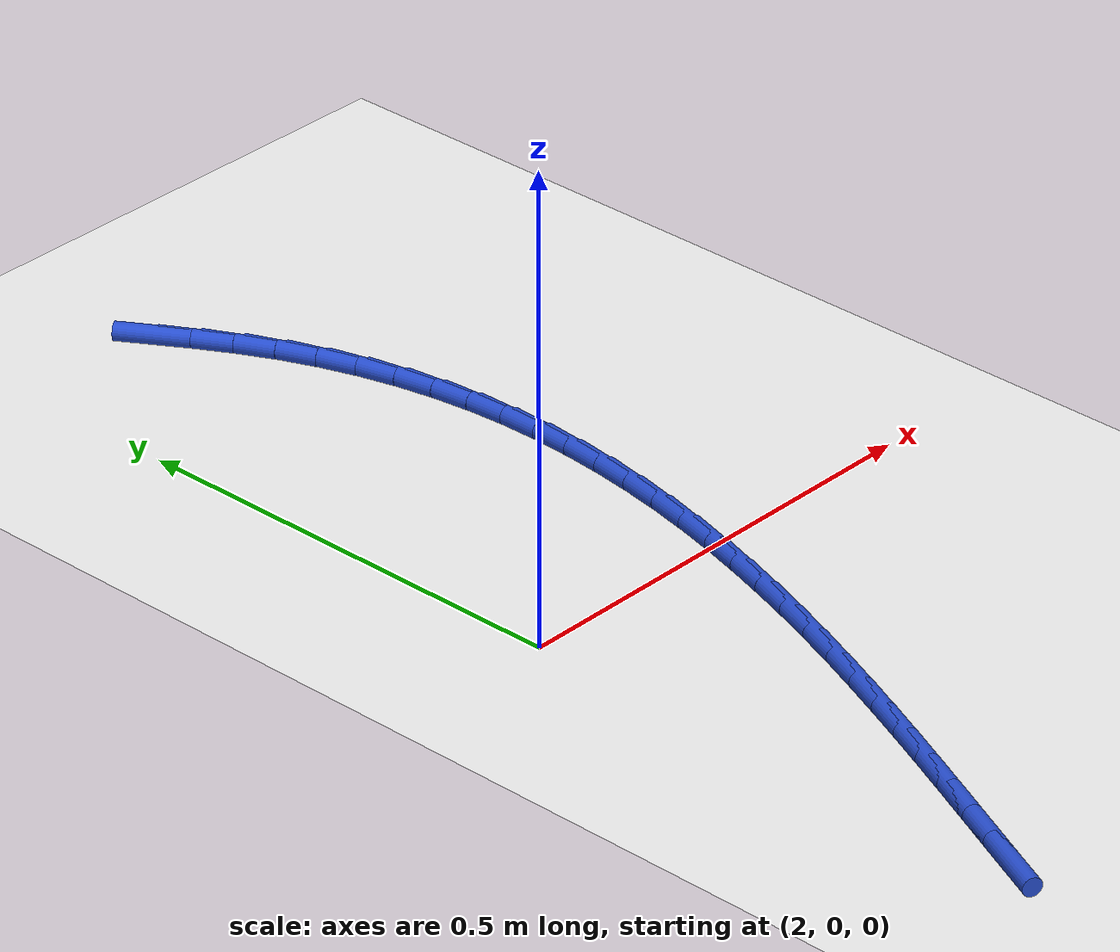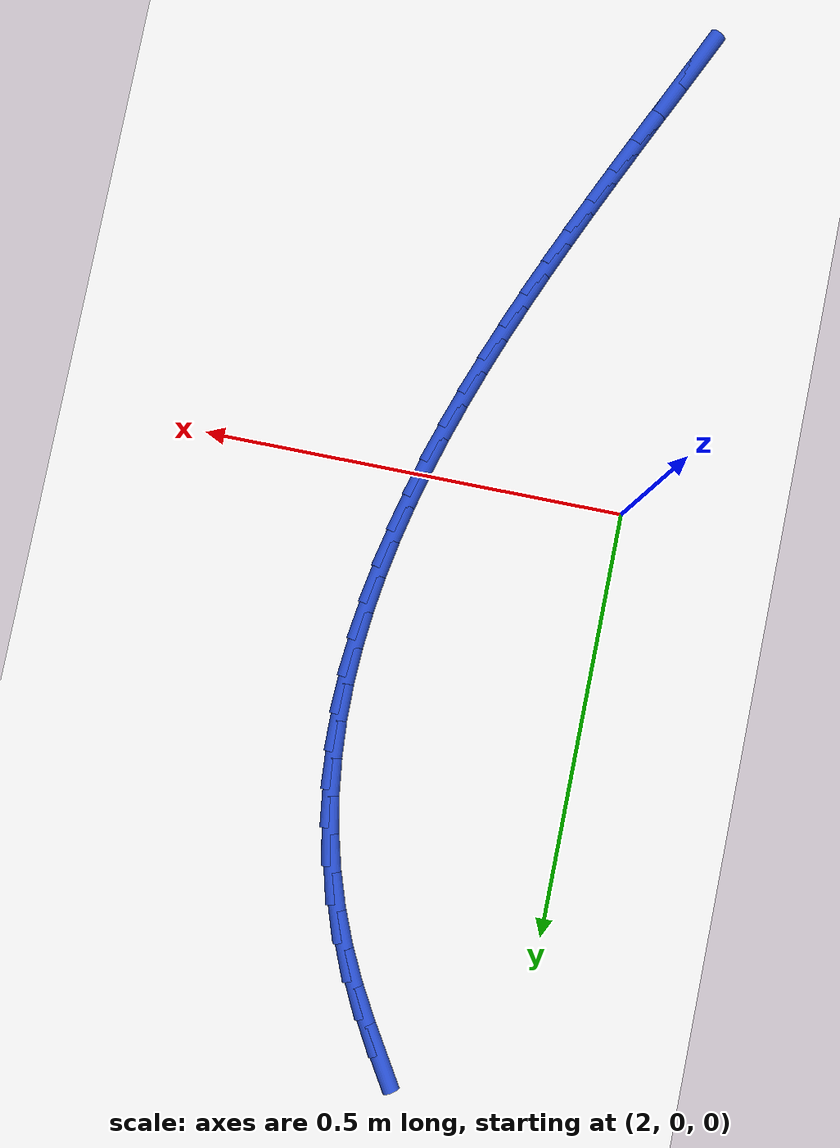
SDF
<sdf version="1.6">
 <world name="default">
  <model name="ground_plane">
   <static>1</static>
   <link name="link">
    <collision name="collision">
     <geometry><plane><normal>0 0 1</normal><size>100 100</size></plane></geometry>
     <surface><friction><ode><mu>100</mu><mu2>50</mu2></ode></friction></surface>
    </collision>
    <visual name="visual">
     <cast_shadows>0</cast_shadows>
     <geometry><plane><normal>0 0 1</normal><size>100 100</size></plane></geometry>
     <material>
      <script><uri>file://media/materials/scripts/gazebo.material</uri><name>Gazebo/WhiteGlow</name></script>
     </material>
    </visual>
   </link>
  </model>
  <model name="line">
   <link name="link_75">
    <pose>2.155904268480809 0.6673640403931729 0.01 0 1.57 -1.020369365184333</pose>
    <collision name="collision">
     <geometry><cylinder><radius>0.01</radius><length>0.08</length></cylinder></geometry>
    </collision>
    <visual name="visual">
     <material>
      <script><name>Gazebo/Blue</name><uri>file://media/materials/scripts/gazebo.material</uri></script>
     </material>
     <geometry><cylinder><radius>0.01</radius><length>0.08</length></cylinder></geometry>
    </visual>
   </link>
   <link name="link_76">
    <pose>2.1790611022780064 0.6296304496813893 0.01 0 1.57 -1.057243417890719</pose>
    <collision name="collision">
     <geometry><cylinder><radius>0.01</radius><length>0.08</length></cylinder></geometry>
    </collision>
    <visual name="visual">
     <material>
      <script><name>Gazebo/Blue</name><uri>file://media/materials/scripts/gazebo.material</uri></script>
     </material>
     <geometry><cylinder><radius>0.01</radius><length>0.08</length></cylinder></geometry>
    </visual>
   </link>
   <link name="link_77">
    <pose>2.200759385672183 0.5911605378914613 0.01 0 1.57 -1.1124662582189528</pose>
    <collision name="collision">
     <geometry><cylinder><radius>0.01</radius><length>0.08</length></cylinder></geometry>
    </collision>
    <visual name="visual">
     <material>
      <script><name>Gazebo/Blue</name><uri>file://media/materials/scripts/gazebo.material</uri></script>
     </material>
     <geometry><cylinder><radius>0.01</radius><length>0.08</length></cylinder></geometry>
    </visual>
   </link>
   <link name="link_78">
    <pose>2.220262598159185 0.5516299882652347 0.01 0 1.57 -1.180949639768087</pose>
    <collision name="collision">
     <geometry><cylinder><radius>0.01</radius><length>0.08</length></cylinder></geometry>
    </collision>
    <visual name="visual">
     <material>
      <script><name>Gazebo/Blue</name><uri>file://media/materials/scripts/gazebo.material</uri></script>
     </material>
     <geometry><cylinder><radius>0.01</radius><length>0.08</length></cylinder></geometry>
    </visual>
   </link>
   <link name="link_79">
    <pose>2.237008294876006 0.5108738755055513 0.01 0 1.57 -1.2494610498458565</pose>
    <collision name="collision">
     <geometry><cylinder><radius>0.01</radius><length>0.08</length></cylinder></geometry>
    </collision>
    <visual name="visual">
     <material>
      <script><name>Gazebo/Blue</name><uri>file://media/materials/scripts/gazebo.material</uri></script>
     </material>
     <geometry><cylinder><radius>0.01</radius><length>0.08</length></cylinder></geometry>
    </visual>
   </link>
   <link name="link_80">
    <pose>2.250896699474961 0.46915091434970824 0.01 0 1.57 -1.3165749980136106</pose>
    <collision name="collision">
     <geometry><cylinder><radius>0.01</radius><length>0.08</length></cylinder></geometry>
    </collision>
    <visual name="visual">
     <material>
      <script><name>Gazebo/Blue</name><uri>file://media/materials/scripts/gazebo.material</uri></script>
     </material>
     <geometry><cylinder><radius>0.01</radius><length>0.08</length></cylinder></geometry>
    </visual>
   </link>
   <link name="link_81">
    <pose>2.2619040534130606 0.4267894160465061 0.01 0 1.57 -1.382648691737762</pose>
    <collision name="collision">
     <geometry><cylinder><radius>0.01</radius><length>0.08</length></cylinder></geometry>
    </collision>
    <visual name="visual">
     <material>
      <script><name>Gazebo/Blue</name><uri>file://media/materials/scripts/gazebo.material</uri></script>
     </material>
     <geometry><cylinder><radius>0.01</radius><length>0.08</length></cylinder></geometry>
    </visual>
   </link>
   <link name="link_82">
    <pose>2.2700392349920593 0.38406254152364466 0.01 0 1.57 -1.446249874943885</pose>
    <collision name="collision">
     <geometry><cylinder><radius>0.01</radius><length>0.08</length></cylinder></geometry>
    </collision>
    <visual name="visual">
     <material>
      <script><name>Gazebo/Blue</name><uri>file://media/materials/scripts/gazebo.material</uri></script>
     </material>
     <geometry><cylinder><radius>0.01</radius><length>0.08</length></cylinder></geometry>
    </visual>
   </link>
   <link name="link_83">
    <pose>2.275423781124191 0.34105307918382954 0.01 0 1.57 -1.506613651423778</pose>
    <collision name="collision">
     <geometry><cylinder><radius>0.01</radius><length>0.08</length></cylinder></geometry>
    </collision>
    <visual name="visual">
     <material>
      <script><name>Gazebo/Blue</name><uri>file://media/materials/scripts/gazebo.material</uri></script>
     </material>
     <geometry><cylinder><radius>0.01</radius><length>0.08</length></cylinder></geometry>
    </visual>
   </link>
   <link name="link_84">
    <pose>2.278203519685037 0.29780277012758266 0.01 0 1.57 -1.5634141090888278</pose>
    <collision name="collision">
     <geometry><cylinder><radius>0.01</radius><length>0.08</length></cylinder></geometry>
    </collision>
    <visual name="visual">
     <material>
      <script><name>Gazebo/Blue</name><uri>file://media/materials/scripts/gazebo.material</uri></script>
     </material>
     <geometry><cylinder><radius>0.01</radius><length>0.08</length></cylinder></geometry>
    </visual>
   </link>
   <link name="link_85">
    <pose>2.278524278550183 0.2543533554554244 0.01 0 1.57 1.5251380988046166</pose>
    <collision name="collision">
     <geometry><cylinder><radius>0.01</radius><length>0.08</length></cylinder></geometry>
    </collision>
    <visual name="visual">
     <material>
      <script><name>Gazebo/Blue</name><uri>file://media/materials/scripts/gazebo.material</uri></script>
     </material>
     <geometry><cylinder><radius>0.01</radius><length>0.08</length></cylinder></geometry>
    </visual>
   </link>
   <link name="link_86">
    <pose>2.27653188559521 0.21074657626787652 0.01 0 1.57 1.4759425711324763</pose>
    <collision name="collision">
     <geometry><cylinder><radius>0.01</radius><length>0.08</length></cylinder></geometry>
    </collision>
    <visual name="visual">
     <material>
      <script><name>Gazebo/Blue</name><uri>file://media/materials/scripts/gazebo.material</uri></script>
     </material>
     <geometry><cylinder><radius>0.01</radius><length>0.08</length></cylinder></geometry>
    </visual>
   </link>
   <link name="link_87">
    <pose>2.272372168695703 0.16702417366546002 0.01 0 1.57 1.4305868336575038</pose>
    <collision name="collision">
     <geometry><cylinder><radius>0.01</radius><length>0.08</length></cylinder></geometry>
    </collision>
    <visual name="visual">
     <material>
      <script><name>Gazebo/Blue</name><uri>file://media/materials/scripts/gazebo.material</uri></script>
     </material>
     <geometry><cylinder><radius>0.01</radius><length>0.08</length></cylinder></geometry>
    </visual>
   </link>
   <link name="link_88">
    <pose>2.266190955727243 0.12322788874869521 0.01 0 1.57 1.388998250799786</pose>
    <collision name="collision">
     <geometry><cylinder><radius>0.01</radius><length>0.08</length></cylinder></geometry>
    </collision>
    <visual name="visual">
     <material>
      <script><name>Gazebo/Blue</name><uri>file://media/materials/scripts/gazebo.material</uri></script>
     </material>
     <geometry><cylinder><radius>0.01</radius><length>0.08</length></cylinder></geometry>
    </visual>
   </link>
   <link name="link_89">
    <pose>2.2581340745654166 0.07939946261810443 0.01 0 1.57 1.3510575698864697</pose>
    <collision name="collision">
     <geometry><cylinder><radius>0.01</radius><length>0.08</length></cylinder></geometry>
    </collision>
    <visual name="visual">
     <material>
      <script><name>Gazebo/Blue</name><uri>file://media/materials/scripts/gazebo.material</uri></script>
     </material>
     <geometry><cylinder><radius>0.01</radius><length>0.08</length></cylinder></geometry>
    </visual>
   </link>
   <link name="link_90">
    <pose>2.2483473530858054 0.035580636374208274 0.01 0 1.57 1.316616870848242</pose>
    <collision name="collision">
     <geometry><cylinder><radius>0.01</radius><length>0.08</length></cylinder></geometry>
    </collision>
    <visual name="visual">
     <material>
      <script><name>Gazebo/Blue</name><uri>file://media/materials/scripts/gazebo.material</uri></script>
     </material>
     <geometry><cylinder><radius>0.01</radius><length>0.08</length></cylinder></geometry>
    </visual>
   </link>
   <link name="link_91">
    <pose>2.236976619163992 -0.008186848882472089 0.01 0 1.57 1.2855141276721478</pose>
    <collision name="collision">
     <geometry><cylinder><radius>0.01</radius><length>0.08</length></cylinder></geometry>
    </collision>
    <visual name="visual">
     <material>
      <script><name>Gazebo/Blue</name><uri>file://media/materials/scripts/gazebo.material</uri></script>
     </material>
     <geometry><cylinder><radius>0.01</radius><length>0.08</length></cylinder></geometry>
    </visual>
   </link>
   <link name="link_92">
    <pose>2.224167700675561 -0.0518612520514165 0.01 0 1.57 1.2575844973854422</pose>
    <collision name="collision">
     <geometry><cylinder><radius>0.01</radius><length>0.08</length></cylinder></geometry>
    </collision>
    <visual name="visual">
     <material>
      <script><name>Gazebo/Blue</name><uri>file://media/materials/scripts/gazebo.material</uri></script>
     </material>
     <geometry><cylinder><radius>0.01</radius><length>0.08</length></cylinder></geometry>
    </visual>
   </link>
   <link name="link_93">
    <pose>2.210066425496096 -0.095400832032102 0.01 0 1.57 1.2326687595561678</pose>
    <collision name="collision">
     <geometry><cylinder><radius>0.01</radius><length>0.08</length></cylinder></geometry>
    </collision>
    <visual name="visual">
     <material>
      <script><name>Gazebo/Blue</name><uri>file://media/materials/scripts/gazebo.material</uri></script>
     </material>
     <geometry><cylinder><radius>0.01</radius><length>0.08</length></cylinder></geometry>
    </visual>
   </link>
   <link name="link_94">
    <pose>2.1948186215011796 -0.13876384772400832 0.01 0 1.57 1.2106194526416034</pose>
    <collision name="collision">
     <geometry><cylinder><radius>0.01</radius><length>0.08</length></cylinder></geometry>
    </collision>
    <visual name="visual">
     <material>
      <script><name>Gazebo/Blue</name><uri>file://media/materials/scripts/gazebo.material</uri></script>
     </material>
     <geometry><cylinder><radius>0.01</radius><length>0.08</length></cylinder></geometry>
    </visual>
   </link>
   <link name="link_95">
    <pose>2.1785701165663953 -0.18190855802661443 0.01 0 1.57 1.191305263471172</pose>
    <collision name="collision">
     <geometry><cylinder><radius>0.01</radius><length>0.08</length></cylinder></geometry>
    </collision>
    <visual name="visual">
     <material>
      <script><name>Gazebo/Blue</name><uri>file://media/materials/scripts/gazebo.material</uri></script>
     </material>
     <geometry><cylinder><radius>0.01</radius><length>0.08</length></cylinder></geometry>
    </visual>
   </link>
   <link name="link_96">
    <pose>2.1614667385673263 -0.22479322183939898 0.01 0 1.57 1.1746141773821444</pose>
    <collision name="collision">
     <geometry><cylinder><radius>0.01</radius><length>0.08</length></cylinder></geometry>
    </collision>
    <visual name="visual">
     <material>
      <script><name>Gazebo/Blue</name><uri>file://media/materials/scripts/gazebo.material</uri></script>
     </material>
     <geometry><cylinder><radius>0.01</radius><length>0.08</length></cylinder></geometry>
    </visual>
   </link>
   <link name="link_97">
    <pose>2.143654315379557 -0.2673760980618411 0.01 0 1.57 1.1604558256636974</pose>
    <collision name="collision">
     <geometry><cylinder><radius>0.01</radius><length>0.08</length></cylinder></geometry>
    </collision>
    <visual name="visual">
     <material>
      <script><name>Gazebo/Blue</name><uri>file://media/materials/scripts/gazebo.material</uri></script>
     </material>
     <geometry><cylinder><radius>0.01</radius><length>0.08</length></cylinder></geometry>
    </visual>
   </link>
   <link name="link_98">
    <pose>2.1252786748786683 -0.30961544559342036 0.01 0 1.57 1.1487633957455161</pose>
    <collision name="collision">
     <geometry><cylinder><radius>0.01</radius><length>0.08</length></cylinder></geometry>
    </collision>
    <visual name="visual">
     <material>
      <script><name>Gazebo/Blue</name><uri>file://media/materials/scripts/gazebo.material</uri></script>
     </material>
     <geometry><cylinder><radius>0.01</radius><length>0.08</length></cylinder></geometry>
    </visual>
   </link>
   <link name="link_99">
    <pose>2.1064856449402463 -0.35146952333361386 0.01 0 1.57 1.1394954093336753</pose>
    <collision name="collision">
     <geometry><cylinder><radius>0.01</radius><length>0.08</length></cylinder></geometry>
    </collision>
    <visual name="visual">
     <material>
      <script><name>Gazebo/Blue</name><uri>file://media/materials/scripts/gazebo.material</uri></script>
     </material>
     <geometry><cylinder><radius>0.01</radius><length>0.08</length></cylinder></geometry>
    </visual>
   </link>
   <link name="link_100">
    <pose>2.0874210534398734 -0.39289659018190154 0.01 0 1.57 1.1326376293907519</pose>
    <collision name="collision">
     <geometry><cylinder><radius>0.01</radius><length>0.08</length></cylinder></geometry>
    </collision>
    <visual name="visual">
     <material>
      <script><name>Gazebo/Blue</name><uri>file://media/materials/scripts/gazebo.material</uri></script>
     </material>
     <geometry><cylinder><radius>0.01</radius><length>0.08</length></cylinder></geometry>
    </visual>
   </link>
   <link name="link_101">
    <pose>2.0682307282531327 -0.4338549050377619 0.01 0 1.57 1.1282053298941332</pose>
    <collision name="collision">
     <geometry><cylinder><radius>0.01</radius><length>0.08</length></cylinder></geometry>
    </collision>
    <visual name="visual">
     <material>
      <script><name>Gazebo/Blue</name><uri>file://media/materials/scripts/gazebo.material</uri></script>
     </material>
     <geometry><cylinder><radius>0.01</radius><length>0.08</length></cylinder></geometry>
    </visual>
   </link>
   <link name="link_102">
    <pose>2.0490604972556077 -0.4743027268006743 0.01 0 1.57 1.1262461524184804</pose>
    <collision name="collision">
     <geometry><cylinder><radius>0.01</radius><length>0.08</length></cylinder></geometry>
    </collision>
    <visual name="visual">
     <material>
      <script><name>Gazebo/Blue</name><uri>file://media/materials/scripts/gazebo.material</uri></script>
     </material>
     <geometry><cylinder><radius>0.01</radius><length>0.08</length></cylinder></geometry>
    </visual>
   </link>
   <link name="link_103">
    <pose>2.0300561883228814 -0.5141983143701181 0.01 0 1.57 1.1268437797459807</pose>
    <collision name="collision">
     <geometry><cylinder><radius>0.01</radius><length>0.08</length></cylinder></geometry>
    </collision>
    <visual name="visual">
     <material>
      <script><name>Gazebo/Blue</name><uri>file://media/materials/scripts/gazebo.material</uri></script>
     </material>
     <geometry><cylinder><radius>0.01</radius><length>0.08</length></cylinder></geometry>
    </visual>
   </link>
   <link name="link_104">
    <pose>2.0113636293305377 -0.5534999266455706 0.01 0 1.57 1.1301226773317021</pose>
    <collision name="collision">
     <geometry><cylinder><radius>0.01</radius><length>0.08</length></cylinder></geometry>
    </collision>
    <visual name="visual">
     <material>
      <script><name>Gazebo/Blue</name><uri>file://media/materials/scripts/gazebo.material</uri></script>
     </material>
     <geometry><cylinder><radius>0.01</radius><length>0.08</length></cylinder></geometry>
    </visual>
   </link>
  </model>
 </world>
</sdf>
